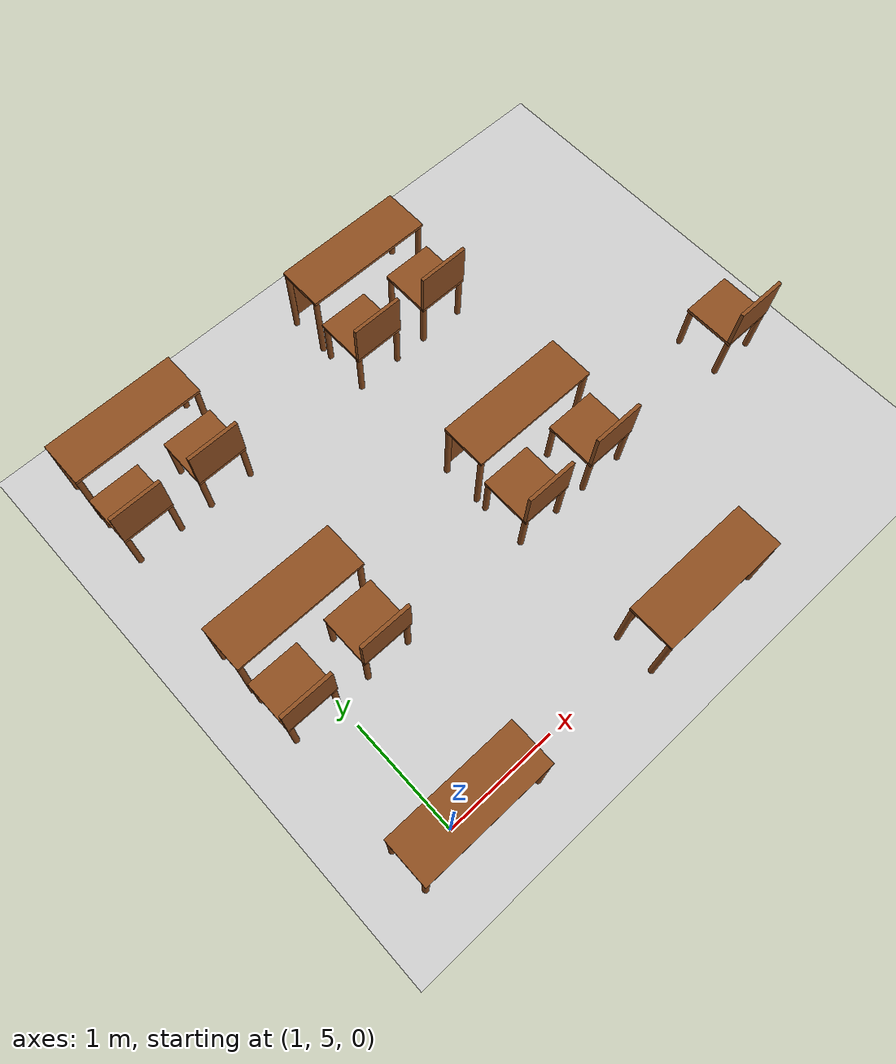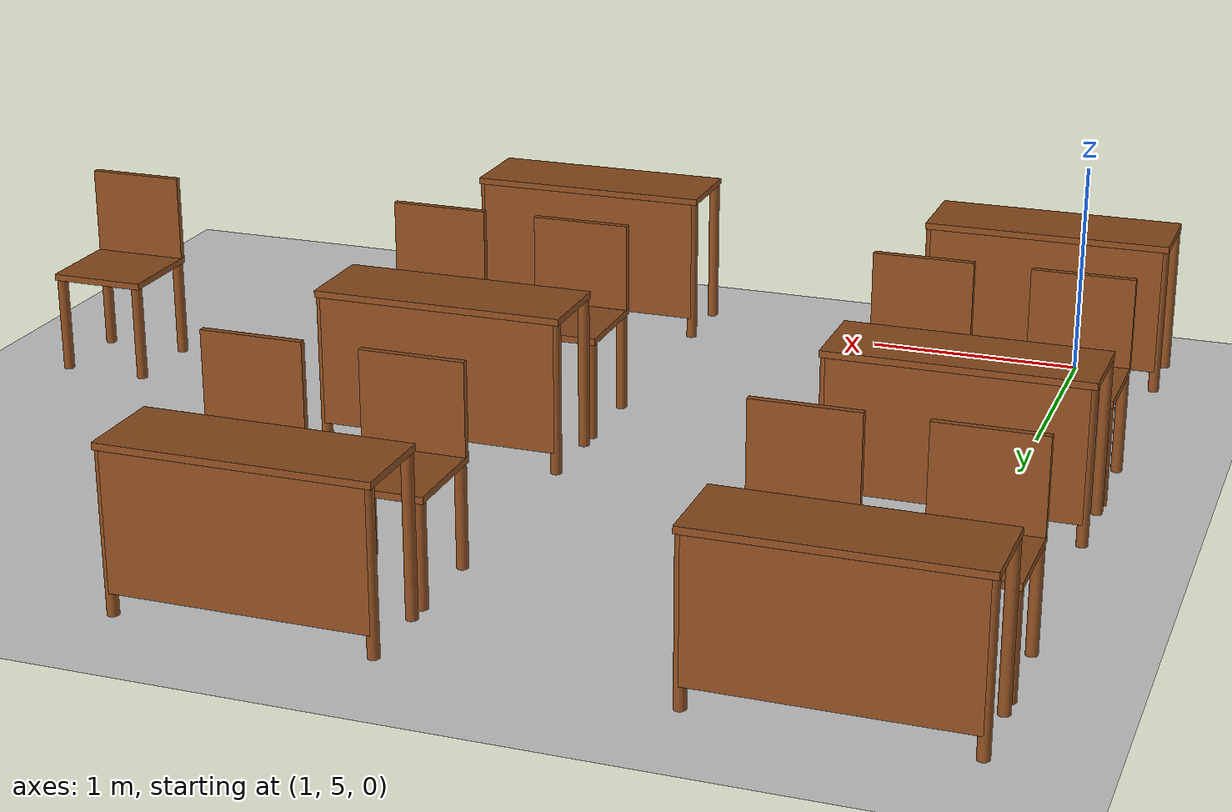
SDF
<sdf version="1.6">
 <world name="lecture_hall">
  <include><uri>model://ground_plane</uri></include>
  <include><uri>model://sun</uri></include>
  <model name="desk_1_1">
   <static>true</static>
   <pose>1.150 8.800 0 0 0 0</pose>
   <link name="link">
    <collision name="c_leg0">
     <pose>-0.550 -0.175 0.345 0 0 0</pose>
     <geometry><cylinder><radius>0.025</radius><length>0.690</length></cylinder></geometry>
    </collision>
    <visual name="v_leg0">
     <pose>-0.550 -0.175 0.345 0 0 0</pose>
     <geometry><cylinder><radius>0.025</radius><length>0.690</length></cylinder></geometry>
     <material><ambient>0.45 0.25 0.1 1</ambient><diffuse>0.55 0.3 0.12 1</diffuse></material>
    </visual>
    <collision name="c_leg1">
     <pose>-0.550 0.175 0.345 0 0 0</pose>
     <geometry><cylinder><radius>0.025</radius><length>0.690</length></cylinder></geometry>
    </collision>
    <visual name="v_leg1">
     <pose>-0.550 0.175 0.345 0 0 0</pose>
     <geometry><cylinder><radius>0.025</radius><length>0.690</length></cylinder></geometry>
     <material><ambient>0.45 0.25 0.1 1</ambient><diffuse>0.55 0.3 0.12 1</diffuse></material>
    </visual>
    <collision name="c_leg2">
     <pose>0.550 -0.175 0.345 0 0 0</pose>
     <geometry><cylinder><radius>0.025</radius><length>0.690</length></cylinder></geometry>
    </collision>
    <visual name="v_leg2">
     <pose>0.550 -0.175 0.345 0 0 0</pose>
     <geometry><cylinder><radius>0.025</radius><length>0.690</length></cylinder></geometry>
     <material><ambient>0.45 0.25 0.1 1</ambient><diffuse>0.55 0.3 0.12 1</diffuse></material>
    </visual>
    <collision name="c_leg3">
     <pose>0.550 0.175 0.345 0 0 0</pose>
     <geometry><cylinder><radius>0.025</radius><length>0.690</length></cylinder></geometry>
    </collision>
    <visual name="v_leg3">
     <pose>0.550 0.175 0.345 0 0 0</pose>
     <geometry><cylinder><radius>0.025</radius><length>0.690</length></cylinder></geometry>
     <material><ambient>0.45 0.25 0.1 1</ambient><diffuse>0.55 0.3 0.12 1</diffuse></material>
    </visual>
    <collision name="c_top">
     <pose>0.000 0.000 0.705 0 0 0</pose>
     <geometry><box><size>1.150 0.400 0.030</size></box></geometry>
    </collision>
    <visual name="v_top">
     <pose>0.000 0.000 0.705 0 0 0</pose>
     <geometry><box><size>1.150 0.400 0.030</size></box></geometry>
     <material><ambient>0.45 0.25 0.1 1</ambient><diffuse>0.55 0.3 0.12 1</diffuse></material>
    </visual>
    <collision name="c_panel">
     <pose>0.000 0.190 0.395 0 0 0</pose>
     <geometry><box><size>1.100 0.020 0.590</size></box></geometry>
    </collision>
    <visual name="v_panel">
     <pose>0.000 0.190 0.395 0 0 0</pose>
     <geometry><box><size>1.100 0.020 0.590</size></box></geometry>
     <material><ambient>0.45 0.25 0.1 1</ambient><diffuse>0.55 0.3 0.12 1</diffuse></material>
    </visual>
   </link>
  </model>
  <model name="chair_1_1_1">
   <static>true</static>
   <pose>0.800 8.325 0 0 0 0</pose>
   <link name="link">
    <collision name="c_leg0">
     <pose>-0.200 -0.200 0.225 0 0 0</pose>
     <geometry><cylinder><radius>0.025</radius><length>0.450</length></cylinder></geometry>
    </collision>
    <visual name="v_leg0">
     <pose>-0.200 -0.200 0.225 0 0 0</pose>
     <geometry><cylinder><radius>0.025</radius><length>0.450</length></cylinder></geometry>
     <material><ambient>0.45 0.25 0.1 1</ambient><diffuse>0.55 0.3 0.12 1</diffuse></material>
    </visual>
    <collision name="c_leg1">
     <pose>-0.200 0.200 0.225 0 0 0</pose>
     <geometry><cylinder><radius>0.025</radius><length>0.450</length></cylinder></geometry>
    </collision>
    <visual name="v_leg1">
     <pose>-0.200 0.200 0.225 0 0 0</pose>
     <geometry><cylinder><radius>0.025</radius><length>0.450</length></cylinder></geometry>
     <material><ambient>0.45 0.25 0.1 1</ambient><diffuse>0.55 0.3 0.12 1</diffuse></material>
    </visual>
    <collision name="c_leg2">
     <pose>0.200 -0.200 0.225 0 0 0</pose>
     <geometry><cylinder><radius>0.025</radius><length>0.450</length></cylinder></geometry>
    </collision>
    <visual name="v_leg2">
     <pose>0.200 -0.200 0.225 0 0 0</pose>
     <geometry><cylinder><radius>0.025</radius><length>0.450</length></cylinder></geometry>
     <material><ambient>0.45 0.25 0.1 1</ambient><diffuse>0.55 0.3 0.12 1</diffuse></material>
    </visual>
    <collision name="c_leg3">
     <pose>0.200 0.200 0.225 0 0 0</pose>
     <geometry><cylinder><radius>0.025</radius><length>0.450</length></cylinder></geometry>
    </collision>
    <visual name="v_leg3">
     <pose>0.200 0.200 0.225 0 0 0</pose>
     <geometry><cylinder><radius>0.025</radius><length>0.450</length></cylinder></geometry>
     <material><ambient>0.45 0.25 0.1 1</ambient><diffuse>0.55 0.3 0.12 1</diffuse></material>
    </visual>
    <collision name="c_seat">
     <pose>0.000 0.000 0.465 0 0 0</pose>
     <geometry><box><size>0.450 0.450 0.030</size></box></geometry>
    </collision>
    <visual name="v_seat">
     <pose>0.000 0.000 0.465 0 0 0</pose>
     <geometry><box><size>0.450 0.450 0.030</size></box></geometry>
     <material><ambient>0.45 0.25 0.1 1</ambient><diffuse>0.55 0.3 0.12 1</diffuse></material>
    </visual>
    <collision name="c_back">
     <pose>0.000 -0.210 0.680 0 0 0</pose>
     <geometry><box><size>0.450 0.030 0.400</size></box></geometry>
    </collision>
    <visual name="v_back">
     <pose>0.000 -0.210 0.680 0 0 0</pose>
     <geometry><box><size>0.450 0.030 0.400</size></box></geometry>
     <material><ambient>0.45 0.25 0.1 1</ambient><diffuse>0.55 0.3 0.12 1</diffuse></material>
    </visual>
   </link>
  </model>
  <model name="chair_1_1_2">
   <static>true</static>
   <pose>1.500 8.325 0 0 0 0</pose>
   <link name="link">
    <collision name="c_leg0">
     <pose>-0.200 -0.200 0.225 0 0 0</pose>
     <geometry><cylinder><radius>0.025</radius><length>0.450</length></cylinder></geometry>
    </collision>
    <visual name="v_leg0">
     <pose>-0.200 -0.200 0.225 0 0 0</pose>
     <geometry><cylinder><radius>0.025</radius><length>0.450</length></cylinder></geometry>
     <material><ambient>0.45 0.25 0.1 1</ambient><diffuse>0.55 0.3 0.12 1</diffuse></material>
    </visual>
    <collision name="c_leg1">
     <pose>-0.200 0.200 0.225 0 0 0</pose>
     <geometry><cylinder><radius>0.025</radius><length>0.450</length></cylinder></geometry>
    </collision>
    <visual name="v_leg1">
     <pose>-0.200 0.200 0.225 0 0 0</pose>
     <geometry><cylinder><radius>0.025</radius><length>0.450</length></cylinder></geometry>
     <material><ambient>0.45 0.25 0.1 1</ambient><diffuse>0.55 0.3 0.12 1</diffuse></material>
    </visual>
    <collision name="c_leg2">
     <pose>0.200 -0.200 0.225 0 0 0</pose>
     <geometry><cylinder><radius>0.025</radius><length>0.450</length></cylinder></geometry>
    </collision>
    <visual name="v_leg2">
     <pose>0.200 -0.200 0.225 0 0 0</pose>
     <geometry><cylinder><radius>0.025</radius><length>0.450</length></cylinder></geometry>
     <material><ambient>0.45 0.25 0.1 1</ambient><diffuse>0.55 0.3 0.12 1</diffuse></material>
    </visual>
    <collision name="c_leg3">
     <pose>0.200 0.200 0.225 0 0 0</pose>
     <geometry><cylinder><radius>0.025</radius><length>0.450</length></cylinder></geometry>
    </collision>
    <visual name="v_leg3">
     <pose>0.200 0.200 0.225 0 0 0</pose>
     <geometry><cylinder><radius>0.025</radius><length>0.450</length></cylinder></geometry>
     <material><ambient>0.45 0.25 0.1 1</ambient><diffuse>0.55 0.3 0.12 1</diffuse></material>
    </visual>
    <collision name="c_seat">
     <pose>0.000 0.000 0.465 0 0 0</pose>
     <geometry><box><size>0.450 0.450 0.030</size></box></geometry>
    </collision>
    <visual name="v_seat">
     <pose>0.000 0.000 0.465 0 0 0</pose>
     <geometry><box><size>0.450 0.450 0.030</size></box></geometry>
     <material><ambient>0.45 0.25 0.1 1</ambient><diffuse>0.55 0.3 0.12 1</diffuse></material>
    </visual>
    <collision name="c_back">
     <pose>0.000 -0.210 0.680 0 0 0</pose>
     <geometry><box><size>0.450 0.030 0.400</size></box></geometry>
    </collision>
    <visual name="v_back">
     <pose>0.000 -0.210 0.680 0 0 0</pose>
     <geometry><box><size>0.450 0.030 0.400</size></box></geometry>
     <material><ambient>0.45 0.25 0.1 1</ambient><diffuse>0.55 0.3 0.12 1</diffuse></material>
    </visual>
   </link>
  </model>
  <model name="desk_1_2">
   <static>true</static>
   <pose>3.450 8.800 0 0 0 0</pose>
   <link name="link">
    <collision name="c_leg0">
     <pose>-0.550 -0.175 0.345 0 0 0</pose>
     <geometry><cylinder><radius>0.025</radius><length>0.690</length></cylinder></geometry>
    </collision>
    <visual name="v_leg0">
     <pose>-0.550 -0.175 0.345 0 0 0</pose>
     <geometry><cylinder><radius>0.025</radius><length>0.690</length></cylinder></geometry>
     <material><ambient>0.45 0.25 0.1 1</ambient><diffuse>0.55 0.3 0.12 1</diffuse></material>
    </visual>
    <collision name="c_leg1">
     <pose>-0.550 0.175 0.345 0 0 0</pose>
     <geometry><cylinder><radius>0.025</radius><length>0.690</length></cylinder></geometry>
    </collision>
    <visual name="v_leg1">
     <pose>-0.550 0.175 0.345 0 0 0</pose>
     <geometry><cylinder><radius>0.025</radius><length>0.690</length></cylinder></geometry>
     <material><ambient>0.45 0.25 0.1 1</ambient><diffuse>0.55 0.3 0.12 1</diffuse></material>
    </visual>
    <collision name="c_leg2">
     <pose>0.550 -0.175 0.345 0 0 0</pose>
     <geometry><cylinder><radius>0.025</radius><length>0.690</length></cylinder></geometry>
    </collision>
    <visual name="v_leg2">
     <pose>0.550 -0.175 0.345 0 0 0</pose>
     <geometry><cylinder><radius>0.025</radius><length>0.690</length></cylinder></geometry>
     <material><ambient>0.45 0.25 0.1 1</ambient><diffuse>0.55 0.3 0.12 1</diffuse></material>
    </visual>
    <collision name="c_leg3">
     <pose>0.550 0.175 0.345 0 0 0</pose>
     <geometry><cylinder><radius>0.025</radius><length>0.690</length></cylinder></geometry>
    </collision>
    <visual name="v_leg3">
     <pose>0.550 0.175 0.345 0 0 0</pose>
     <geometry><cylinder><radius>0.025</radius><length>0.690</length></cylinder></geometry>
     <material><ambient>0.45 0.25 0.1 1</ambient><diffuse>0.55 0.3 0.12 1</diffuse></material>
    </visual>
    <collision name="c_top">
     <pose>0.000 0.000 0.705 0 0 0</pose>
     <geometry><box><size>1.150 0.400 0.030</size></box></geometry>
    </collision>
    <visual name="v_top">
     <pose>0.000 0.000 0.705 0 0 0</pose>
     <geometry><box><size>1.150 0.400 0.030</size></box></geometry>
     <material><ambient>0.45 0.25 0.1 1</ambient><diffuse>0.55 0.3 0.12 1</diffuse></material>
    </visual>
    <collision name="c_panel">
     <pose>0.000 0.190 0.395 0 0 0</pose>
     <geometry><box><size>1.100 0.020 0.590</size></box></geometry>
    </collision>
    <visual name="v_panel">
     <pose>0.000 0.190 0.395 0 0 0</pose>
     <geometry><box><size>1.100 0.020 0.590</size></box></geometry>
     <material><ambient>0.45 0.25 0.1 1</ambient><diffuse>0.55 0.3 0.12 1</diffuse></material>
    </visual>
   </link>
  </model>
  <model name="chair_1_2_1">
   <static>true</static>
   <pose>3.100 8.325 0 0 0 0</pose>
   <link name="link">
    <collision name="c_leg0">
     <pose>-0.200 -0.200 0.225 0 0 0</pose>
     <geometry><cylinder><radius>0.025</radius><length>0.450</length></cylinder></geometry>
    </collision>
    <visual name="v_leg0">
     <pose>-0.200 -0.200 0.225 0 0 0</pose>
     <geometry><cylinder><radius>0.025</radius><length>0.450</length></cylinder></geometry>
     <material><ambient>0.45 0.25 0.1 1</ambient><diffuse>0.55 0.3 0.12 1</diffuse></material>
    </visual>
    <collision name="c_leg1">
     <pose>-0.200 0.200 0.225 0 0 0</pose>
     <geometry><cylinder><radius>0.025</radius><length>0.450</length></cylinder></geometry>
    </collision>
    <visual name="v_leg1">
     <pose>-0.200 0.200 0.225 0 0 0</pose>
     <geometry><cylinder><radius>0.025</radius><length>0.450</length></cylinder></geometry>
     <material><ambient>0.45 0.25 0.1 1</ambient><diffuse>0.55 0.3 0.12 1</diffuse></material>
    </visual>
    <collision name="c_leg2">
     <pose>0.200 -0.200 0.225 0 0 0</pose>
     <geometry><cylinder><radius>0.025</radius><length>0.450</length></cylinder></geometry>
    </collision>
    <visual name="v_leg2">
     <pose>0.200 -0.200 0.225 0 0 0</pose>
     <geometry><cylinder><radius>0.025</radius><length>0.450</length></cylinder></geometry>
     <material><ambient>0.45 0.25 0.1 1</ambient><diffuse>0.55 0.3 0.12 1</diffuse></material>
    </visual>
    <collision name="c_leg3">
     <pose>0.200 0.200 0.225 0 0 0</pose>
     <geometry><cylinder><radius>0.025</radius><length>0.450</length></cylinder></geometry>
    </collision>
    <visual name="v_leg3">
     <pose>0.200 0.200 0.225 0 0 0</pose>
     <geometry><cylinder><radius>0.025</radius><length>0.450</length></cylinder></geometry>
     <material><ambient>0.45 0.25 0.1 1</ambient><diffuse>0.55 0.3 0.12 1</diffuse></material>
    </visual>
    <collision name="c_seat">
     <pose>0.000 0.000 0.465 0 0 0</pose>
     <geometry><box><size>0.450 0.450 0.030</size></box></geometry>
    </collision>
    <visual name="v_seat">
     <pose>0.000 0.000 0.465 0 0 0</pose>
     <geometry><box><size>0.450 0.450 0.030</size></box></geometry>
     <material><ambient>0.45 0.25 0.1 1</ambient><diffuse>0.55 0.3 0.12 1</diffuse></material>
    </visual>
    <collision name="c_back">
     <pose>0.000 -0.210 0.680 0 0 0</pose>
     <geometry><box><size>0.450 0.030 0.400</size></box></geometry>
    </collision>
    <visual name="v_back">
     <pose>0.000 -0.210 0.680 0 0 0</pose>
     <geometry><box><size>0.450 0.030 0.400</size></box></geometry>
     <material><ambient>0.45 0.25 0.1 1</ambient><diffuse>0.55 0.3 0.12 1</diffuse></material>
    </visual>
   </link>
  </model>
  <model name="chair_1_2_2">
   <static>true</static>
   <pose>3.800 8.325 0 0 0 0</pose>
   <link name="link">
    <collision name="c_leg0">
     <pose>-0.200 -0.200 0.225 0 0 0</pose>
     <geometry><cylinder><radius>0.025</radius><length>0.450</length></cylinder></geometry>
    </collision>
    <visual name="v_leg0">
     <pose>-0.200 -0.200 0.225 0 0 0</pose>
     <geometry><cylinder><radius>0.025</radius><length>0.450</length></cylinder></geometry>
     <material><ambient>0.45 0.25 0.1 1</ambient><diffuse>0.55 0.3 0.12 1</diffuse></material>
    </visual>
    <collision name="c_leg1">
     <pose>-0.200 0.200 0.225 0 0 0</pose>
     <geometry><cylinder><radius>0.025</radius><length>0.450</length></cylinder></geometry>
    </collision>
    <visual name="v_leg1">
     <pose>-0.200 0.200 0.225 0 0 0</pose>
     <geometry><cylinder><radius>0.025</radius><length>0.450</length></cylinder></geometry>
     <material><ambient>0.45 0.25 0.1 1</ambient><diffuse>0.55 0.3 0.12 1</diffuse></material>
    </visual>
    <collision name="c_leg2">
     <pose>0.200 -0.200 0.225 0 0 0</pose>
     <geometry><cylinder><radius>0.025</radius><length>0.450</length></cylinder></geometry>
    </collision>
    <visual name="v_leg2">
     <pose>0.200 -0.200 0.225 0 0 0</pose>
     <geometry><cylinder><radius>0.025</radius><length>0.450</length></cylinder></geometry>
     <material><ambient>0.45 0.25 0.1 1</ambient><diffuse>0.55 0.3 0.12 1</diffuse></material>
    </visual>
    <collision name="c_leg3">
     <pose>0.200 0.200 0.225 0 0 0</pose>
     <geometry><cylinder><radius>0.025</radius><length>0.450</length></cylinder></geometry>
    </collision>
    <visual name="v_leg3">
     <pose>0.200 0.200 0.225 0 0 0</pose>
     <geometry><cylinder><radius>0.025</radius><length>0.450</length></cylinder></geometry>
     <material><ambient>0.45 0.25 0.1 1</ambient><diffuse>0.55 0.3 0.12 1</diffuse></material>
    </visual>
    <collision name="c_seat">
     <pose>0.000 0.000 0.465 0 0 0</pose>
     <geometry><box><size>0.450 0.450 0.030</size></box></geometry>
    </collision>
    <visual name="v_seat">
     <pose>0.000 0.000 0.465 0 0 0</pose>
     <geometry><box><size>0.450 0.450 0.030</size></box></geometry>
     <material><ambient>0.45 0.25 0.1 1</ambient><diffuse>0.55 0.3 0.12 1</diffuse></material>
    </visual>
    <collision name="c_back">
     <pose>0.000 -0.210 0.680 0 0 0</pose>
     <geometry><box><size>0.450 0.030 0.400</size></box></geometry>
    </collision>
    <visual name="v_back">
     <pose>0.000 -0.210 0.680 0 0 0</pose>
     <geometry><box><size>0.450 0.030 0.400</size></box></geometry>
     <material><ambient>0.45 0.25 0.1 1</ambient><diffuse>0.55 0.3 0.12 1</diffuse></material>
    </visual>
   </link>
  </model>
  <model name="desk_2_1">
   <static>true</static>
   <pose>1.150 6.900 0 0 0 0</pose>
   <link name="link">
    <collision name="c_leg0">
     <pose>-0.550 -0.175 0.345 0 0 0</pose>
     <geometry><cylinder><radius>0.025</radius><length>0.690</length></cylinder></geometry>
    </collision>
    <visual name="v_leg0">
     <pose>-0.550 -0.175 0.345 0 0 0</pose>
     <geometry><cylinder><radius>0.025</radius><length>0.690</length></cylinder></geometry>
     <material><ambient>0.45 0.25 0.1 1</ambient><diffuse>0.55 0.3 0.12 1</diffuse></material>
    </visual>
    <collision name="c_leg1">
     <pose>-0.550 0.175 0.345 0 0 0</pose>
     <geometry><cylinder><radius>0.025</radius><length>0.690</length></cylinder></geometry>
    </collision>
    <visual name="v_leg1">
     <pose>-0.550 0.175 0.345 0 0 0</pose>
     <geometry><cylinder><radius>0.025</radius><length>0.690</length></cylinder></geometry>
     <material><ambient>0.45 0.25 0.1 1</ambient><diffuse>0.55 0.3 0.12 1</diffuse></material>
    </visual>
    <collision name="c_leg2">
     <pose>0.550 -0.175 0.345 0 0 0</pose>
     <geometry><cylinder><radius>0.025</radius><length>0.690</length></cylinder></geometry>
    </collision>
    <visual name="v_leg2">
     <pose>0.550 -0.175 0.345 0 0 0</pose>
     <geometry><cylinder><radius>0.025</radius><length>0.690</length></cylinder></geometry>
     <material><ambient>0.45 0.25 0.1 1</ambient><diffuse>0.55 0.3 0.12 1</diffuse></material>
    </visual>
    <collision name="c_leg3">
     <pose>0.550 0.175 0.345 0 0 0</pose>
     <geometry><cylinder><radius>0.025</radius><length>0.690</length></cylinder></geometry>
    </collision>
    <visual name="v_leg3">
     <pose>0.550 0.175 0.345 0 0 0</pose>
     <geometry><cylinder><radius>0.025</radius><length>0.690</length></cylinder></geometry>
     <material><ambient>0.45 0.25 0.1 1</ambient><diffuse>0.55 0.3 0.12 1</diffuse></material>
    </visual>
    <collision name="c_top">
     <pose>0.000 0.000 0.705 0 0 0</pose>
     <geometry><box><size>1.150 0.400 0.030</size></box></geometry>
    </collision>
    <visual name="v_top">
     <pose>0.000 0.000 0.705 0 0 0</pose>
     <geometry><box><size>1.150 0.400 0.030</size></box></geometry>
     <material><ambient>0.45 0.25 0.1 1</ambient><diffuse>0.55 0.3 0.12 1</diffuse></material>
    </visual>
    <collision name="c_panel">
     <pose>0.000 0.190 0.395 0 0 0</pose>
     <geometry><box><size>1.100 0.020 0.590</size></box></geometry>
    </collision>
    <visual name="v_panel">
     <pose>0.000 0.190 0.395 0 0 0</pose>
     <geometry><box><size>1.100 0.020 0.590</size></box></geometry>
     <material><ambient>0.45 0.25 0.1 1</ambient><diffuse>0.55 0.3 0.12 1</diffuse></material>
    </visual>
   </link>
  </model>
  <model name="chair_2_1_1">
   <static>true</static>
   <pose>0.800 6.425 0 0 0 0</pose>
   <link name="link">
    <collision name="c_leg0">
     <pose>-0.200 -0.200 0.225 0 0 0</pose>
     <geometry><cylinder><radius>0.025</radius><length>0.450</length></cylinder></geometry>
    </collision>
    <visual name="v_leg0">
     <pose>-0.200 -0.200 0.225 0 0 0</pose>
     <geometry><cylinder><radius>0.025</radius><length>0.450</length></cylinder></geometry>
     <material><ambient>0.45 0.25 0.1 1</ambient><diffuse>0.55 0.3 0.12 1</diffuse></material>
    </visual>
    <collision name="c_leg1">
     <pose>-0.200 0.200 0.225 0 0 0</pose>
     <geometry><cylinder><radius>0.025</radius><length>0.450</length></cylinder></geometry>
    </collision>
    <visual name="v_leg1">
     <pose>-0.200 0.200 0.225 0 0 0</pose>
     <geometry><cylinder><radius>0.025</radius><length>0.450</length></cylinder></geometry>
     <material><ambient>0.45 0.25 0.1 1</ambient><diffuse>0.55 0.3 0.12 1</diffuse></material>
    </visual>
    <collision name="c_leg2">
     <pose>0.200 -0.200 0.225 0 0 0</pose>
     <geometry><cylinder><radius>0.025</radius><length>0.450</length></cylinder></geometry>
    </collision>
    <visual name="v_leg2">
     <pose>0.200 -0.200 0.225 0 0 0</pose>
     <geometry><cylinder><radius>0.025</radius><length>0.450</length></cylinder></geometry>
     <material><ambient>0.45 0.25 0.1 1</ambient><diffuse>0.55 0.3 0.12 1</diffuse></material>
    </visual>
    <collision name="c_leg3">
     <pose>0.200 0.200 0.225 0 0 0</pose>
     <geometry><cylinder><radius>0.025</radius><length>0.450</length></cylinder></geometry>
    </collision>
    <visual name="v_leg3">
     <pose>0.200 0.200 0.225 0 0 0</pose>
     <geometry><cylinder><radius>0.025</radius><length>0.450</length></cylinder></geometry>
     <material><ambient>0.45 0.25 0.1 1</ambient><diffuse>0.55 0.3 0.12 1</diffuse></material>
    </visual>
    <collision name="c_seat">
     <pose>0.000 0.000 0.465 0 0 0</pose>
     <geometry><box><size>0.450 0.450 0.030</size></box></geometry>
    </collision>
    <visual name="v_seat">
     <pose>0.000 0.000 0.465 0 0 0</pose>
     <geometry><box><size>0.450 0.450 0.030</size></box></geometry>
     <material><ambient>0.45 0.25 0.1 1</ambient><diffuse>0.55 0.3 0.12 1</diffuse></material>
    </visual>
    <collision name="c_back">
     <pose>0.000 -0.210 0.680 0 0 0</pose>
     <geometry><box><size>0.450 0.030 0.400</size></box></geometry>
    </collision>
    <visual name="v_back">
     <pose>0.000 -0.210 0.680 0 0 0</pose>
     <geometry><box><size>0.450 0.030 0.400</size></box></geometry>
     <material><ambient>0.45 0.25 0.1 1</ambient><diffuse>0.55 0.3 0.12 1</diffuse></material>
    </visual>
   </link>
  </model>
  <model name="chair_2_1_2">
   <static>true</static>
   <pose>1.500 6.425 0 0 0 0</pose>
   <link name="link">
    <collision name="c_leg0">
     <pose>-0.200 -0.200 0.225 0 0 0</pose>
     <geometry><cylinder><radius>0.025</radius><length>0.450</length></cylinder></geometry>
    </collision>
    <visual name="v_leg0">
     <pose>-0.200 -0.200 0.225 0 0 0</pose>
     <geometry><cylinder><radius>0.025</radius><length>0.450</length></cylinder></geometry>
     <material><ambient>0.45 0.25 0.1 1</ambient><diffuse>0.55 0.3 0.12 1</diffuse></material>
    </visual>
    <collision name="c_leg1">
     <pose>-0.200 0.200 0.225 0 0 0</pose>
     <geometry><cylinder><radius>0.025</radius><length>0.450</length></cylinder></geometry>
    </collision>
    <visual name="v_leg1">
     <pose>-0.200 0.200 0.225 0 0 0</pose>
     <geometry><cylinder><radius>0.025</radius><length>0.450</length></cylinder></geometry>
     <material><ambient>0.45 0.25 0.1 1</ambient><diffuse>0.55 0.3 0.12 1</diffuse></material>
    </visual>
    <collision name="c_leg2">
     <pose>0.200 -0.200 0.225 0 0 0</pose>
     <geometry><cylinder><radius>0.025</radius><length>0.450</length></cylinder></geometry>
    </collision>
    <visual name="v_leg2">
     <pose>0.200 -0.200 0.225 0 0 0</pose>
     <geometry><cylinder><radius>0.025</radius><length>0.450</length></cylinder></geometry>
     <material><ambient>0.45 0.25 0.1 1</ambient><diffuse>0.55 0.3 0.12 1</diffuse></material>
    </visual>
    <collision name="c_leg3">
     <pose>0.200 0.200 0.225 0 0 0</pose>
     <geometry><cylinder><radius>0.025</radius><length>0.450</length></cylinder></geometry>
    </collision>
    <visual name="v_leg3">
     <pose>0.200 0.200 0.225 0 0 0</pose>
     <geometry><cylinder><radius>0.025</radius><length>0.450</length></cylinder></geometry>
     <material><ambient>0.45 0.25 0.1 1</ambient><diffuse>0.55 0.3 0.12 1</diffuse></material>
    </visual>
    <collision name="c_seat">
     <pose>0.000 0.000 0.465 0 0 0</pose>
     <geometry><box><size>0.450 0.450 0.030</size></box></geometry>
    </collision>
    <visual name="v_seat">
     <pose>0.000 0.000 0.465 0 0 0</pose>
     <geometry><box><size>0.450 0.450 0.030</size></box></geometry>
     <material><ambient>0.45 0.25 0.1 1</ambient><diffuse>0.55 0.3 0.12 1</diffuse></material>
    </visual>
    <collision name="c_back">
     <pose>0.000 -0.210 0.680 0 0 0</pose>
     <geometry><box><size>0.450 0.030 0.400</size></box></geometry>
    </collision>
    <visual name="v_back">
     <pose>0.000 -0.210 0.680 0 0 0</pose>
     <geometry><box><size>0.450 0.030 0.400</size></box></geometry>
     <material><ambient>0.45 0.25 0.1 1</ambient><diffuse>0.55 0.3 0.12 1</diffuse></material>
    </visual>
   </link>
  </model>
  <model name="desk_2_2">
   <static>true</static>
   <pose>3.450 6.900 0 0 0 0</pose>
   <link name="link">
    <collision name="c_leg0">
     <pose>-0.550 -0.175 0.345 0 0 0</pose>
     <geometry><cylinder><radius>0.025</radius><length>0.690</length></cylinder></geometry>
    </collision>
    <visual name="v_leg0">
     <pose>-0.550 -0.175 0.345 0 0 0</pose>
     <geometry><cylinder><radius>0.025</radius><length>0.690</length></cylinder></geometry>
     <material><ambient>0.45 0.25 0.1 1</ambient><diffuse>0.55 0.3 0.12 1</diffuse></material>
    </visual>
    <collision name="c_leg1">
     <pose>-0.550 0.175 0.345 0 0 0</pose>
     <geometry><cylinder><radius>0.025</radius><length>0.690</length></cylinder></geometry>
    </collision>
    <visual name="v_leg1">
     <pose>-0.550 0.175 0.345 0 0 0</pose>
     <geometry><cylinder><radius>0.025</radius><length>0.690</length></cylinder></geometry>
     <material><ambient>0.45 0.25 0.1 1</ambient><diffuse>0.55 0.3 0.12 1</diffuse></material>
    </visual>
    <collision name="c_leg2">
     <pose>0.550 -0.175 0.345 0 0 0</pose>
     <geometry><cylinder><radius>0.025</radius><length>0.690</length></cylinder></geometry>
    </collision>
    <visual name="v_leg2">
     <pose>0.550 -0.175 0.345 0 0 0</pose>
     <geometry><cylinder><radius>0.025</radius><length>0.690</length></cylinder></geometry>
     <material><ambient>0.45 0.25 0.1 1</ambient><diffuse>0.55 0.3 0.12 1</diffuse></material>
    </visual>
    <collision name="c_leg3">
     <pose>0.550 0.175 0.345 0 0 0</pose>
     <geometry><cylinder><radius>0.025</radius><length>0.690</length></cylinder></geometry>
    </collision>
    <visual name="v_leg3">
     <pose>0.550 0.175 0.345 0 0 0</pose>
     <geometry><cylinder><radius>0.025</radius><length>0.690</length></cylinder></geometry>
     <material><ambient>0.45 0.25 0.1 1</ambient><diffuse>0.55 0.3 0.12 1</diffuse></material>
    </visual>
    <collision name="c_top">
     <pose>0.000 0.000 0.705 0 0 0</pose>
     <geometry><box><size>1.150 0.400 0.030</size></box></geometry>
    </collision>
    <visual name="v_top">
     <pose>0.000 0.000 0.705 0 0 0</pose>
     <geometry><box><size>1.150 0.400 0.030</size></box></geometry>
     <material><ambient>0.45 0.25 0.1 1</ambient><diffuse>0.55 0.3 0.12 1</diffuse></material>
    </visual>
    <collision name="c_panel">
     <pose>0.000 0.190 0.395 0 0 0</pose>
     <geometry><box><size>1.100 0.020 0.590</size></box></geometry>
    </collision>
    <visual name="v_panel">
     <pose>0.000 0.190 0.395 0 0 0</pose>
     <geometry><box><size>1.100 0.020 0.590</size></box></geometry>
     <material><ambient>0.45 0.25 0.1 1</ambient><diffuse>0.55 0.3 0.12 1</diffuse></material>
    </visual>
   </link>
  </model>
  <model name="chair_2_2_1">
   <static>true</static>
   <pose>3.100 6.425 0 0 0 0</pose>
   <link name="link">
    <collision name="c_leg0">
     <pose>-0.200 -0.200 0.225 0 0 0</pose>
     <geometry><cylinder><radius>0.025</radius><length>0.450</length></cylinder></geometry>
    </collision>
    <visual name="v_leg0">
     <pose>-0.200 -0.200 0.225 0 0 0</pose>
     <geometry><cylinder><radius>0.025</radius><length>0.450</length></cylinder></geometry>
     <material><ambient>0.45 0.25 0.1 1</ambient><diffuse>0.55 0.3 0.12 1</diffuse></material>
    </visual>
    <collision name="c_leg1">
     <pose>-0.200 0.200 0.225 0 0 0</pose>
     <geometry><cylinder><radius>0.025</radius><length>0.450</length></cylinder></geometry>
    </collision>
    <visual name="v_leg1">
     <pose>-0.200 0.200 0.225 0 0 0</pose>
     <geometry><cylinder><radius>0.025</radius><length>0.450</length></cylinder></geometry>
     <material><ambient>0.45 0.25 0.1 1</ambient><diffuse>0.55 0.3 0.12 1</diffuse></material>
    </visual>
    <collision name="c_leg2">
     <pose>0.200 -0.200 0.225 0 0 0</pose>
     <geometry><cylinder><radius>0.025</radius><length>0.450</length></cylinder></geometry>
    </collision>
    <visual name="v_leg2">
     <pose>0.200 -0.200 0.225 0 0 0</pose>
     <geometry><cylinder><radius>0.025</radius><length>0.450</length></cylinder></geometry>
     <material><ambient>0.45 0.25 0.1 1</ambient><diffuse>0.55 0.3 0.12 1</diffuse></material>
    </visual>
    <collision name="c_leg3">
     <pose>0.200 0.200 0.225 0 0 0</pose>
     <geometry><cylinder><radius>0.025</radius><length>0.450</length></cylinder></geometry>
    </collision>
    <visual name="v_leg3">
     <pose>0.200 0.200 0.225 0 0 0</pose>
     <geometry><cylinder><radius>0.025</radius><length>0.450</length></cylinder></geometry>
     <material><ambient>0.45 0.25 0.1 1</ambient><diffuse>0.55 0.3 0.12 1</diffuse></material>
    </visual>
    <collision name="c_seat">
     <pose>0.000 0.000 0.465 0 0 0</pose>
     <geometry><box><size>0.450 0.450 0.030</size></box></geometry>
    </collision>
    <visual name="v_seat">
     <pose>0.000 0.000 0.465 0 0 0</pose>
     <geometry><box><size>0.450 0.450 0.030</size></box></geometry>
     <material><ambient>0.45 0.25 0.1 1</ambient><diffuse>0.55 0.3 0.12 1</diffuse></material>
    </visual>
    <collision name="c_back">
     <pose>0.000 -0.210 0.680 0 0 0</pose>
     <geometry><box><size>0.450 0.030 0.400</size></box></geometry>
    </collision>
    <visual name="v_back">
     <pose>0.000 -0.210 0.680 0 0 0</pose>
     <geometry><box><size>0.450 0.030 0.400</size></box></geometry>
     <material><ambient>0.45 0.25 0.1 1</ambient><diffuse>0.55 0.3 0.12 1</diffuse></material>
    </visual>
   </link>
  </model>
  <model name="chair_2_2_2">
   <static>true</static>
   <pose>3.800 6.425 0 0 0 0</pose>
   <link name="link">
    <collision name="c_leg0">
     <pose>-0.200 -0.200 0.225 0 0 0</pose>
     <geometry><cylinder><radius>0.025</radius><length>0.450</length></cylinder></geometry>
    </collision>
    <visual name="v_leg0">
     <pose>-0.200 -0.200 0.225 0 0 0</pose>
     <geometry><cylinder><radius>0.025</radius><length>0.450</length></cylinder></geometry>
     <material><ambient>0.45 0.25 0.1 1</ambient><diffuse>0.55 0.3 0.12 1</diffuse></material>
    </visual>
    <collision name="c_leg1">
     <pose>-0.200 0.200 0.225 0 0 0</pose>
     <geometry><cylinder><radius>0.025</radius><length>0.450</length></cylinder></geometry>
    </collision>
    <visual name="v_leg1">
     <pose>-0.200 0.200 0.225 0 0 0</pose>
     <geometry><cylinder><radius>0.025</radius><length>0.450</length></cylinder></geometry>
     <material><ambient>0.45 0.25 0.1 1</ambient><diffuse>0.55 0.3 0.12 1</diffuse></material>
    </visual>
    <collision name="c_leg2">
     <pose>0.200 -0.200 0.225 0 0 0</pose>
     <geometry><cylinder><radius>0.025</radius><length>0.450</length></cylinder></geometry>
    </collision>
    <visual name="v_leg2">
     <pose>0.200 -0.200 0.225 0 0 0</pose>
     <geometry><cylinder><radius>0.025</radius><length>0.450</length></cylinder></geometry>
     <material><ambient>0.45 0.25 0.1 1</ambient><diffuse>0.55 0.3 0.12 1</diffuse></material>
    </visual>
    <collision name="c_leg3">
     <pose>0.200 0.200 0.225 0 0 0</pose>
     <geometry><cylinder><radius>0.025</radius><length>0.450</length></cylinder></geometry>
    </collision>
    <visual name="v_leg3">
     <pose>0.200 0.200 0.225 0 0 0</pose>
     <geometry><cylinder><radius>0.025</radius><length>0.450</length></cylinder></geometry>
     <material><ambient>0.45 0.25 0.1 1</ambient><diffuse>0.55 0.3 0.12 1</diffuse></material>
    </visual>
    <collision name="c_seat">
     <pose>0.000 0.000 0.465 0 0 0</pose>
     <geometry><box><size>0.450 0.450 0.030</size></box></geometry>
    </collision>
    <visual name="v_seat">
     <pose>0.000 0.000 0.465 0 0 0</pose>
     <geometry><box><size>0.450 0.450 0.030</size></box></geometry>
     <material><ambient>0.45 0.25 0.1 1</ambient><diffuse>0.55 0.3 0.12 1</diffuse></material>
    </visual>
    <collision name="c_back">
     <pose>0.000 -0.210 0.680 0 0 0</pose>
     <geometry><box><size>0.450 0.030 0.400</size></box></geometry>
    </collision>
    <visual name="v_back">
     <pose>0.000 -0.210 0.680 0 0 0</pose>
     <geometry><box><size>0.450 0.030 0.400</size></box></geometry>
     <material><ambient>0.45 0.25 0.1 1</ambient><diffuse>0.55 0.3 0.12 1</diffuse></material>
    </visual>
   </link>
  </model>
  <model name="chair_2_3_1">
   <static>true</static>
   <pose>5.400 6.425 0 0 0 0</pose>
   <link name="link">
    <collision name="c_leg0">
     <pose>-0.200 -0.200 0.225 0 0 0</pose>
     <geometry><cylinder><radius>0.025</radius><length>0.450</length></cylinder></geometry>
    </collision>
    <visual name="v_leg0">
     <pose>-0.200 -0.200 0.225 0 0 0</pose>
     <geometry><cylinder><radius>0.025</radius><length>0.450</length></cylinder></geometry>
     <material><ambient>0.45 0.25 0.1 1</ambient><diffuse>0.55 0.3 0.12 1</diffuse></material>
    </visual>
    <collision name="c_leg1">
     <pose>-0.200 0.200 0.225 0 0 0</pose>
     <geometry><cylinder><radius>0.025</radius><length>0.450</length></cylinder></geometry>
    </collision>
    <visual name="v_leg1">
     <pose>-0.200 0.200 0.225 0 0 0</pose>
     <geometry><cylinder><radius>0.025</radius><length>0.450</length></cylinder></geometry>
     <material><ambient>0.45 0.25 0.1 1</ambient><diffuse>0.55 0.3 0.12 1</diffuse></material>
    </visual>
    <collision name="c_leg2">
     <pose>0.200 -0.200 0.225 0 0 0</pose>
     <geometry><cylinder><radius>0.025</radius><length>0.450</length></cylinder></geometry>
    </collision>
    <visual name="v_leg2">
     <pose>0.200 -0.200 0.225 0 0 0</pose>
     <geometry><cylinder><radius>0.025</radius><length>0.450</length></cylinder></geometry>
     <material><ambient>0.45 0.25 0.1 1</ambient><diffuse>0.55 0.3 0.12 1</diffuse></material>
    </visual>
    <collision name="c_leg3">
     <pose>0.200 0.200 0.225 0 0 0</pose>
     <geometry><cylinder><radius>0.025</radius><length>0.450</length></cylinder></geometry>
    </collision>
    <visual name="v_leg3">
     <pose>0.200 0.200 0.225 0 0 0</pose>
     <geometry><cylinder><radius>0.025</radius><length>0.450</length></cylinder></geometry>
     <material><ambient>0.45 0.25 0.1 1</ambient><diffuse>0.55 0.3 0.12 1</diffuse></material>
    </visual>
    <collision name="c_seat">
     <pose>0.000 0.000 0.465 0 0 0</pose>
     <geometry><box><size>0.450 0.450 0.030</size></box></geometry>
    </collision>
    <visual name="v_seat">
     <pose>0.000 0.000 0.465 0 0 0</pose>
     <geometry><box><size>0.450 0.450 0.030</size></box></geometry>
     <material><ambient>0.45 0.25 0.1 1</ambient><diffuse>0.55 0.3 0.12 1</diffuse></material>
    </visual>
    <collision name="c_back">
     <pose>0.000 -0.210 0.680 0 0 0</pose>
     <geometry><box><size>0.450 0.030 0.400</size></box></geometry>
    </collision>
    <visual name="v_back">
     <pose>0.000 -0.210 0.680 0 0 0</pose>
     <geometry><box><size>0.450 0.030 0.400</size></box></geometry>
     <material><ambient>0.45 0.25 0.1 1</ambient><diffuse>0.55 0.3 0.12 1</diffuse></material>
    </visual>
   </link>
  </model>
  <model name="desk_3_1">
   <static>true</static>
   <pose>1.150 5.000 0 0 0 0</pose>
   <link name="link">
    <collision name="c_leg0">
     <pose>-0.550 -0.175 0.345 0 0 0</pose>
     <geometry><cylinder><radius>0.025</radius><length>0.690</length></cylinder></geometry>
    </collision>
    <visual name="v_leg0">
     <pose>-0.550 -0.175 0.345 0 0 0</pose>
     <geometry><cylinder><radius>0.025</radius><length>0.690</length></cylinder></geometry>
     <material><ambient>0.45 0.25 0.1 1</ambient><diffuse>0.55 0.3 0.12 1</diffuse></material>
    </visual>
    <collision name="c_leg1">
     <pose>-0.550 0.175 0.345 0 0 0</pose>
     <geometry><cylinder><radius>0.025</radius><length>0.690</length></cylinder></geometry>
    </collision>
    <visual name="v_leg1">
     <pose>-0.550 0.175 0.345 0 0 0</pose>
     <geometry><cylinder><radius>0.025</radius><length>0.690</length></cylinder></geometry>
     <material><ambient>0.45 0.25 0.1 1</ambient><diffuse>0.55 0.3 0.12 1</diffuse></material>
    </visual>
    <collision name="c_leg2">
     <pose>0.550 -0.175 0.345 0 0 0</pose>
     <geometry><cylinder><radius>0.025</radius><length>0.690</length></cylinder></geometry>
    </collision>
    <visual name="v_leg2">
     <pose>0.550 -0.175 0.345 0 0 0</pose>
     <geometry><cylinder><radius>0.025</radius><length>0.690</length></cylinder></geometry>
     <material><ambient>0.45 0.25 0.1 1</ambient><diffuse>0.55 0.3 0.12 1</diffuse></material>
    </visual>
    <collision name="c_leg3">
     <pose>0.550 0.175 0.345 0 0 0</pose>
     <geometry><cylinder><radius>0.025</radius><length>0.690</length></cylinder></geometry>
    </collision>
    <visual name="v_leg3">
     <pose>0.550 0.175 0.345 0 0 0</pose>
     <geometry><cylinder><radius>0.025</radius><length>0.690</length></cylinder></geometry>
     <material><ambient>0.45 0.25 0.1 1</ambient><diffuse>0.55 0.3 0.12 1</diffuse></material>
    </visual>
    <collision name="c_top">
     <pose>0.000 0.000 0.705 0 0 0</pose>
     <geometry><box><size>1.150 0.400 0.030</size></box></geometry>
    </collision>
    <visual name="v_top">
     <pose>0.000 0.000 0.705 0 0 0</pose>
     <geometry><box><size>1.150 0.400 0.030</size></box></geometry>
     <material><ambient>0.45 0.25 0.1 1</ambient><diffuse>0.55 0.3 0.12 1</diffuse></material>
    </visual>
    <collision name="c_panel">
     <pose>0.000 0.190 0.395 0 0 0</pose>
     <geometry><box><size>1.100 0.020 0.590</size></box></geometry>
    </collision>
    <visual name="v_panel">
     <pose>0.000 0.190 0.395 0 0 0</pose>
     <geometry><box><size>1.100 0.020 0.590</size></box></geometry>
     <material><ambient>0.45 0.25 0.1 1</ambient><diffuse>0.55 0.3 0.12 1</diffuse></material>
    </visual>
   </link>
  </model>
  <model name="desk_3_2">
   <static>true</static>
   <pose>3.450 5.000 0 0 0 0</pose>
   <link name="link">
    <collision name="c_leg0">
     <pose>-0.550 -0.175 0.345 0 0 0</pose>
     <geometry><cylinder><radius>0.025</radius><length>0.690</length></cylinder></geometry>
    </collision>
    <visual name="v_leg0">
     <pose>-0.550 -0.175 0.345 0 0 0</pose>
     <geometry><cylinder><radius>0.025</radius><length>0.690</length></cylinder></geometry>
     <material><ambient>0.45 0.25 0.1 1</ambient><diffuse>0.55 0.3 0.12 1</diffuse></material>
    </visual>
    <collision name="c_leg1">
     <pose>-0.550 0.175 0.345 0 0 0</pose>
     <geometry><cylinder><radius>0.025</radius><length>0.690</length></cylinder></geometry>
    </collision>
    <visual name="v_leg1">
     <pose>-0.550 0.175 0.345 0 0 0</pose>
     <geometry><cylinder><radius>0.025</radius><length>0.690</length></cylinder></geometry>
     <material><ambient>0.45 0.25 0.1 1</ambient><diffuse>0.55 0.3 0.12 1</diffuse></material>
    </visual>
    <collision name="c_leg2">
     <pose>0.550 -0.175 0.345 0 0 0</pose>
     <geometry><cylinder><radius>0.025</radius><length>0.690</length></cylinder></geometry>
    </collision>
    <visual name="v_leg2">
     <pose>0.550 -0.175 0.345 0 0 0</pose>
     <geometry><cylinder><radius>0.025</radius><length>0.690</length></cylinder></geometry>
     <material><ambient>0.45 0.25 0.1 1</ambient><diffuse>0.55 0.3 0.12 1</diffuse></material>
    </visual>
    <collision name="c_leg3">
     <pose>0.550 0.175 0.345 0 0 0</pose>
     <geometry><cylinder><radius>0.025</radius><length>0.690</length></cylinder></geometry>
    </collision>
    <visual name="v_leg3">
     <pose>0.550 0.175 0.345 0 0 0</pose>
     <geometry><cylinder><radius>0.025</radius><length>0.690</length></cylinder></geometry>
     <material><ambient>0.45 0.25 0.1 1</ambient><diffuse>0.55 0.3 0.12 1</diffuse></material>
    </visual>
    <collision name="c_top">
     <pose>0.000 0.000 0.705 0 0 0</pose>
     <geometry><box><size>1.150 0.400 0.030</size></box></geometry>
    </collision>
    <visual name="v_top">
     <pose>0.000 0.000 0.705 0 0 0</pose>
     <geometry><box><size>1.150 0.400 0.030</size></box></geometry>
     <material><ambient>0.45 0.25 0.1 1</ambient><diffuse>0.55 0.3 0.12 1</diffuse></material>
    </visual>
    <collision name="c_panel">
     <pose>0.000 0.190 0.395 0 0 0</pose>
     <geometry><box><size>1.100 0.020 0.590</size></box></geometry>
    </collision>
    <visual name="v_panel">
     <pose>0.000 0.190 0.395 0 0 0</pose>
     <geometry><box><size>1.100 0.020 0.590</size></box></geometry>
     <material><ambient>0.45 0.25 0.1 1</ambient><diffuse>0.55 0.3 0.12 1</diffuse></material>
    </visual>
   </link>
  </model>
 </world>
</sdf>
